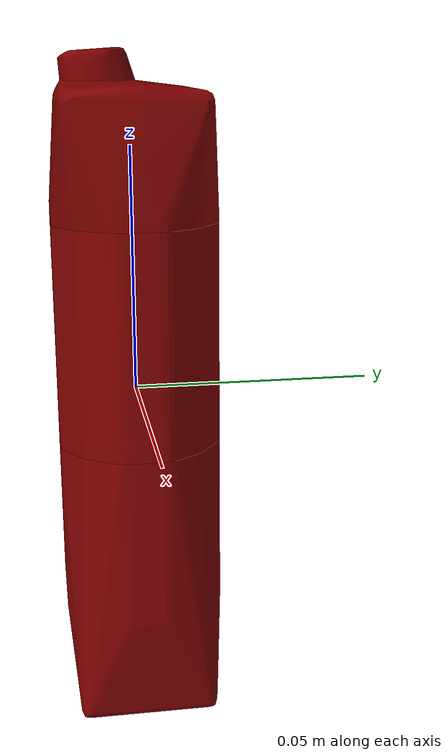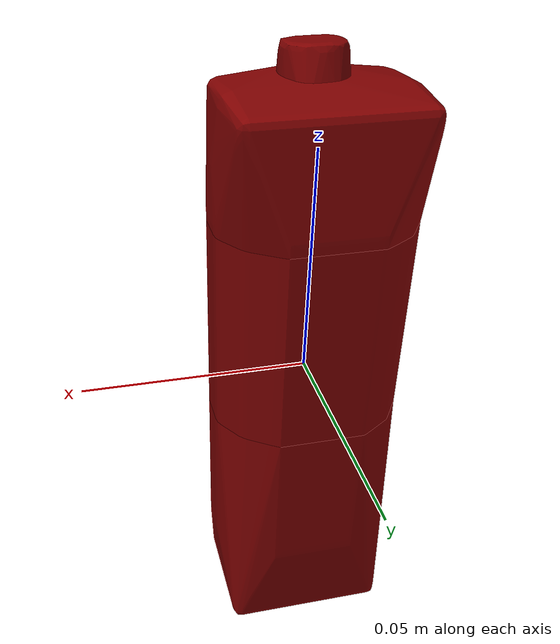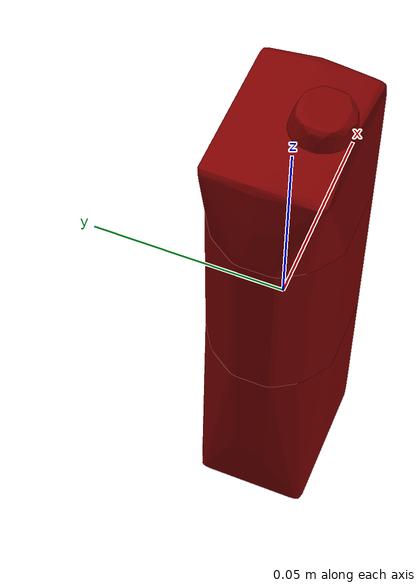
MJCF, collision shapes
<?xml version='1.0' encoding='utf-8'?>
<mujoco model="boxed_drink_13">
  <asset>
    <mesh file="visual/model_normalized_0.obj" name="model_normalized_0_vis" scale="0.13599999999999998 0.13599999999999998 0.13599999999999998" refquat="1.0 0.0 0.0 0.0" />
    <texture type="2d" name="image0" file="visual/image0.png" />
    <material name="Material.071" texture="image0" specular="0.5" shininess="0.25" />
    <mesh file="collision/collision_mesh_collision_0.obj" name="boxed_collision_mesh_0" scale="0.13599999999999998 0.13599999999999998 0.13599999999999998" refquat="1.0 0.0 0.0 0.0" />
    <mesh file="collision/collision_mesh_collision_1.obj" name="boxed_collision_mesh_1" scale="0.13599999999999998 0.13599999999999998 0.13599999999999998" refquat="1.0 0.0 0.0 0.0" />
    <mesh file="collision/collision_mesh_collision_2.obj" name="boxed_collision_mesh_2" scale="0.13599999999999998 0.13599999999999998 0.13599999999999998" refquat="1.0 0.0 0.0 0.0" />
    <mesh file="collision/collision_mesh_collision_3.obj" name="boxed_collision_mesh_3" scale="0.13599999999999998 0.13599999999999998 0.13599999999999998" refquat="1.0 0.0 0.0 0.0" />
  </asset>
  <default>
    <default class="region">
      <geom group="1" conaffinity="0" contype="0" rgba="0 1 0 0" mass="0" />
    </default>
    <default class="collision">
      <geom group="0" rgba="0.5 0 0 0.5" density="1472.722934225" />
    </default>
  </default>
  <worldbody>
    <body>
      <body name="object">
        <geom solimp="0.998 0.998 0.001" solref="0.001 1" density="147.272293423" friction="0.95 0.3 0.1" type="mesh" mesh="model_normalized_0_vis" conaffinity="0" contype="0" group="1" material="Material.071" />
        <geom class="region" name="reg_bbox" type="box" pos="0.0 0.0 2.628403999999973e-05" size="0.021295025519999997 0.016358848399999997 0.06862159820000001" />
        <geom mesh="boxed_collision_mesh_0" type="mesh" class="collision" />
        <geom mesh="boxed_collision_mesh_1" type="mesh" class="collision" />
        <geom mesh="boxed_collision_mesh_2" type="mesh" class="collision" />
        <geom mesh="boxed_collision_mesh_3" type="mesh" class="collision" />
      </body>
    </body>
  </worldbody>
</mujoco>
